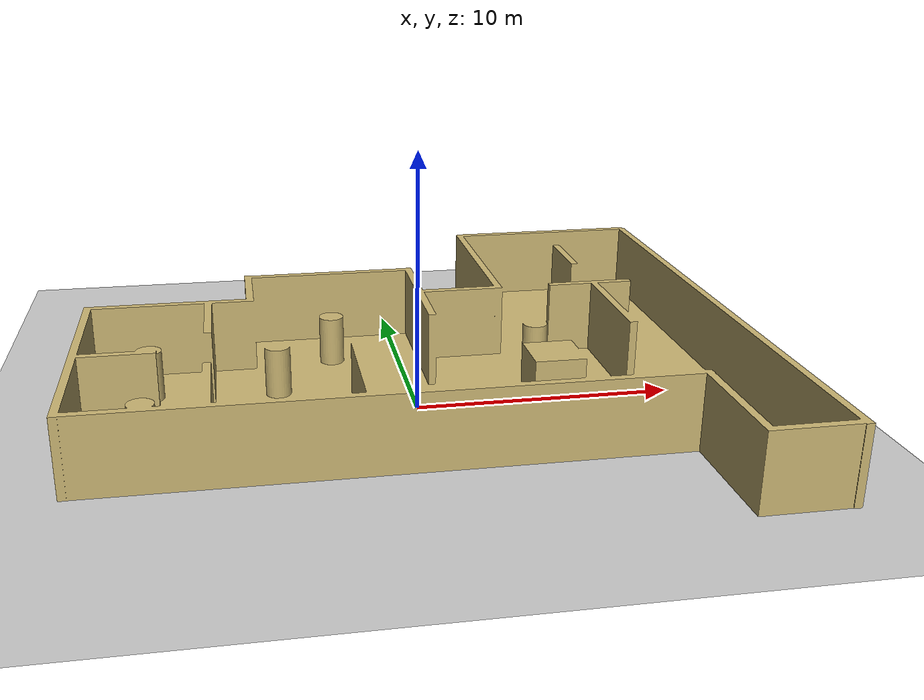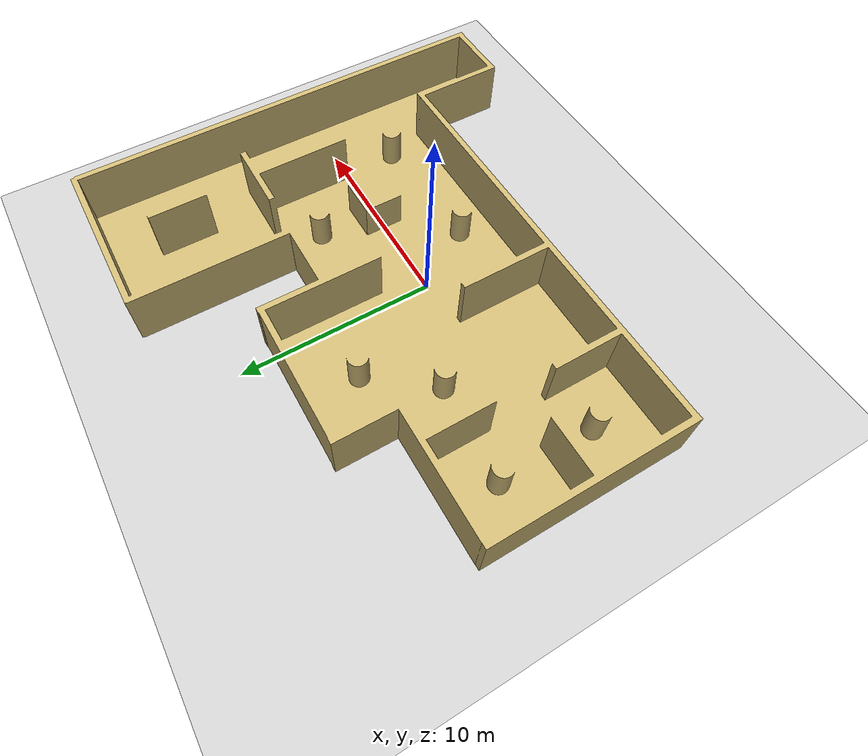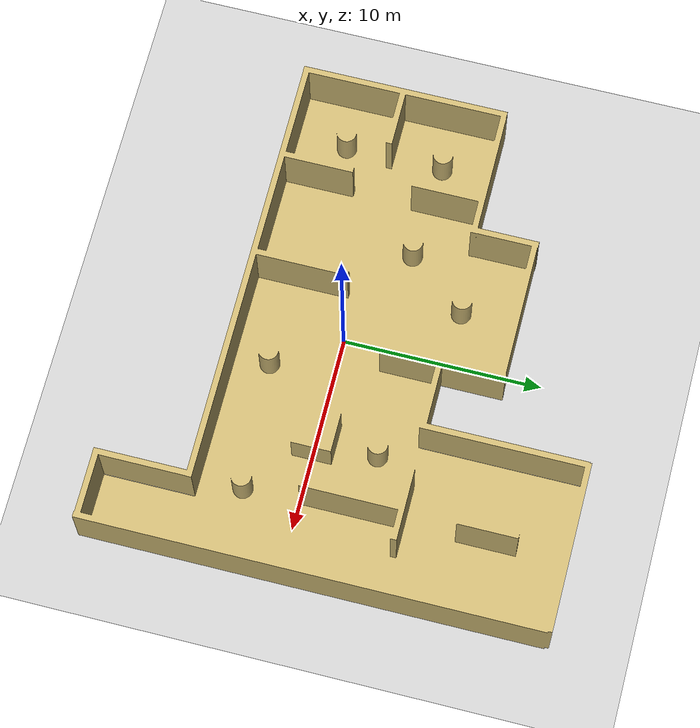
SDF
<?xml version="1.0"?>
<sdf version="1.6">
  <world name="training_env_world">

    <!-- ROS state plugin: enables /gazebo/set_model_state, get_model_state -->
    <plugin name="gazebo_ros_state" filename="libgazebo_ros_state.so">
      <ros>
        <namespace>/gazebo</namespace>
        <argument>--ros-args --remap model_states:=model_states_gazebo</argument>
        <argument>--ros-args --remap link_states:=link_states_gazebo</argument>
      </ros>
      <update_rate>100.0</update_rate>
    </plugin>

    <!-- Ground plane -->
    <include>
      <uri>model://ground_plane</uri>
    </include>

    <!-- Sun light -->
    <include>
      <uri>model://sun</uri>
    </include>

    <!-- Scene settings -->
    <scene>
      <shadows>false</shadows>
      <ambient>0.4 0.4 0.4 1</ambient>
      <background>0.7 0.7 0.7 1</background>
    </scene>

    <!-- Camera view (top-down, centered on training env) -->
    <gui fullscreen='0'>
      <camera name='user_camera'>
        <pose frame=''>0.0 0.0 30.0 0 1.5708 0</pose>
        <view_controller>orbit</view_controller>
        <projection_type>perspective</projection_type>
      </camera>
    </gui>

    <!-- Physics settings (same as td7_static.world) -->
    <physics type="ode">
      <real_time_update_rate>1000.0</real_time_update_rate>
      <max_step_size>0.001</max_step_size>
      <real_time_factor>1</real_time_factor>
      <ode>
        <solver>
          <type>quick</type>
          <iters>150</iters>
          <precon_iters>0</precon_iters>
          <sor>1.400000</sor>
          <use_dynamic_moi_rescaling>1</use_dynamic_moi_rescaling>
        </solver>
        <constraints>
          <cfm>0.00001</cfm>
          <erp>0.2</erp>
          <contact_max_correcting_vel>2000.000000</contact_max_correcting_vel>
          <contact_surface_layer>0.01000</contact_surface_layer>
        </constraints>
      </ode>
    </physics>

    <!--
      Blender Training Environment
      Includes walls and floor layout from Blender design.
      The model.sdf applies roll=+90° to convert OBJ Y-up → Gazebo Z-up.
    -->
    <include>
      <uri>model://training_env</uri>
      <name>training_env</name>
      <pose>0 0 0 0 0 0</pose>
      <static>true</static>
    </include>

  </world>
</sdf>

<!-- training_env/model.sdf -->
<sdf version="1.6">
  <model name="training_env">
    <static>true</static>

    <link name="training_env_link">
      <pose>0 0 0 1.5708 0 0</pose>

      <!-- Visual mesh -->
      <visual name="training_env_visual">
        <geometry>
          <mesh>
            <uri>model://training_env/training_env.obj</uri>
            <scale>1.0 1.0 1.0</scale>
          </mesh>
        </geometry>
        <material>
          <ambient>0.8 0.716 0.453 1</ambient>
          <diffuse>0.8 0.716 0.453 1</diffuse>
          <specular>0.5 0.5 0.5 1</specular>
        </material>
      </visual>

      <!-- Collision mesh — walls are solid, robot cannot pass through -->
      <collision name="training_env_collision">
        <geometry>
          <mesh>
            <uri>model://training_env/training_env.obj</uri>
            <scale>1.0 1.0 1.0</scale>
          </mesh>
        </geometry>
        <surface>
          <friction>
            <ode>
              <mu>100</mu>
              <mu2>50</mu2>
            </ode>
          </friction>
          <contact>
            <ode>
              <kp>1e6</kp>
              <kd>100</kd>
              <max_vel>1.0</max_vel>
              <min_depth>0.001</min_depth>
            </ode>
          </contact>
        </surface>
      </collision>

    </link>
  </model>
</sdf>
